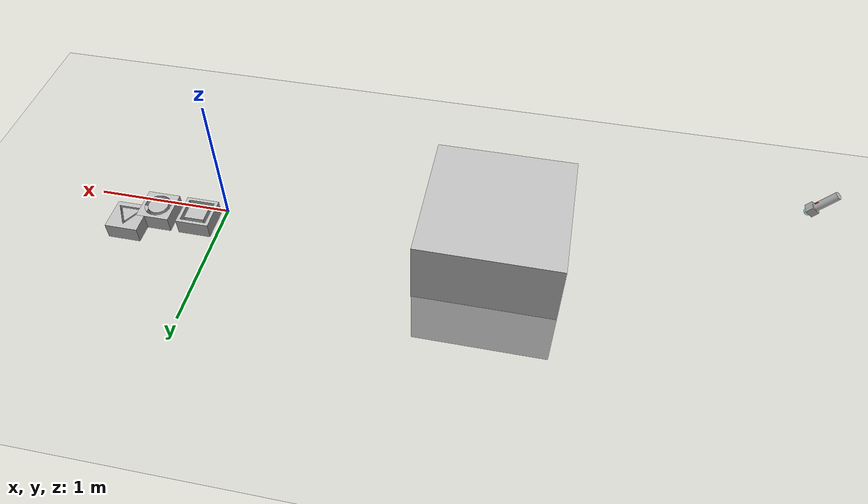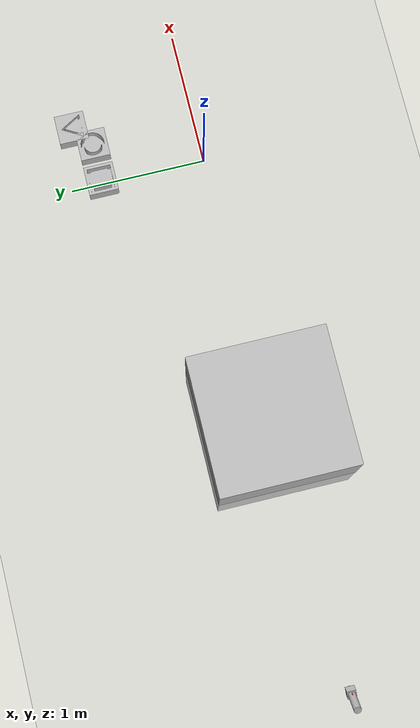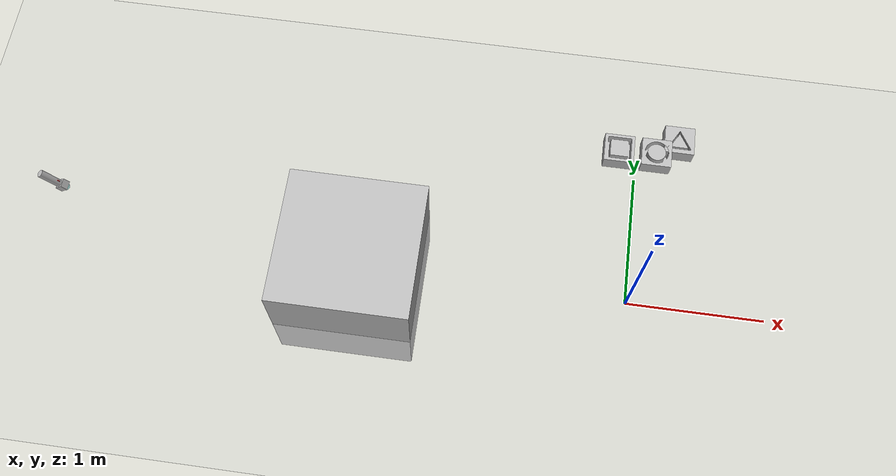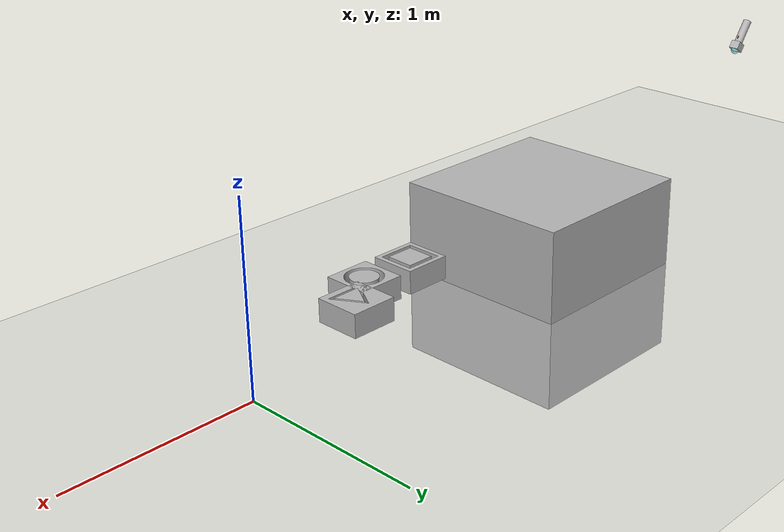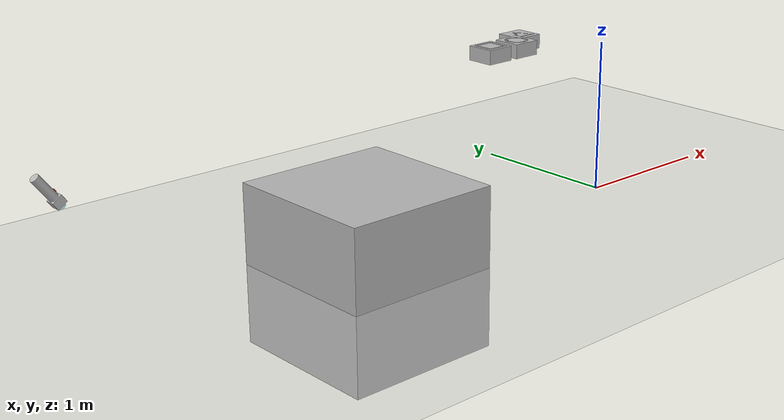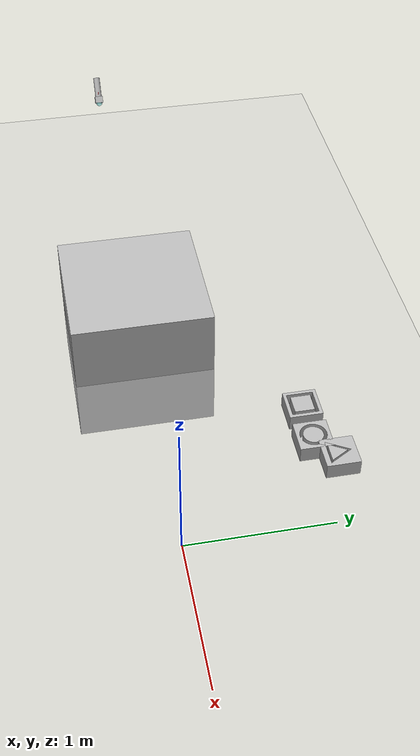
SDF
<sdf version="1.6">
 <world name="default">
  <scene>
   <ambient>0.4 0.4 0.4 1</ambient>
   <background>0.25 0.25 0.25 1</background>
   <shadows>true</shadows>
  </scene>
  <light type="directional" name="some_light">
   <diffuse>0.7 0.7 0.7 0</diffuse>
   <specular>1 1 1 0</specular>
   <direction>-1 -1 -1</direction>
  </light>
  <include><uri>model://sun</uri></include>
  <include><uri>model://ground_plane</uri></include>
  <model name="big_square_path">
   <pose>-0.25 0.78 0.78 0 0 0</pose>
   <static>false</static>
   <link name="link">
    <inertial><mass>1</mass></inertial>
    <collision name="collision">
     <geometry><mesh><uri>model://bigSquare/BigSquare.stl</uri><scale>0.001 0.001 0.001</scale></mesh></geometry>
    </collision>
    <visual name="visual">
     <geometry><mesh><uri>model://bigSquare/BigSquare.stl</uri><scale>0.001 0.001 0.001</scale></mesh></geometry>
    </visual>
   </link>
  </model>
  <model name="big_circle_path">
   <pose>0 0.78 0.78 0 0 0</pose>
   <static>false</static>
   <link name="link">
    <inertial><mass>1</mass></inertial>
    <collision name="collision">
     <pose>-0.115 0 0 0 -0 0</pose>
     <geometry><mesh><uri>model://bigCircle/BigCircle.stl</uri><scale>0.001 0.001 0.001</scale></mesh></geometry>
    </collision>
    <visual name="visual">
     <pose>-0.115 0 0 0 -0 0</pose>
     <geometry><mesh><uri>model://bigCircle/BigCircle.stl</uri><scale>0.001 0.001 0.001</scale></mesh></geometry>
    </visual>
   </link>
  </model>
  <model name="big_triangle_path">
   <pose>0.25 0.78 0.78 0 0 0</pose>
   <static>false</static>
   <link name="link">
    <inertial><mass>1</mass></inertial>
    <collision name="collision">
     <pose>-0.1 0.115 0 0 -0 0</pose>
     <geometry>
      <mesh><uri>model://bigTriangle/BigTriangle.stl</uri><scale>0.001 0.001 0.001</scale></mesh>
     </geometry>
    </collision>
    <visual name="visual">
     <pose>-0.1 0.115 0 0 0 0</pose>
     <geometry>
      <mesh><uri>model://bigTriangle/BigTriangle.stl</uri><scale>0.001 0.001 0.001</scale></mesh>
     </geometry>
    </visual>
   </link>
  </model>
  <model name="my_model">
   <pose>-2 0 0 0 0 0</pose>
   <static>true</static>
   <link name="link">
    <inertial><mass>1.0</mass></inertial>
    <collision name="collision"><geometry><box><size>1 1 1</size></box></geometry></collision>
    <visual name="visual"><geometry><box><size>1 1 1</size></box></geometry></visual>
   </link>
   <joint name="joint1" type="fixed"><parent>link</parent><child>light_source</child></joint>
   <link name="light_source">
    <pose>0 0 0.20 0 0 0</pose>
    <light name="lamp" type="spot">
     <pose>0 0 0.0 0 3.14159 0</pose>
     <attenuation><range>30</range><linear>0.05</linear></attenuation>
     <diffuse>0.5 1 1 1</diffuse>
     <specular>1 1 1 1</specular>
     <spot><inner_angle>0.3</inner_angle><outer_angle>0.35</outer_angle><falloff>1</falloff></spot>
     <direction>0 0 -1</direction>
    </light>
    <visual name="lamp">
     <geometry><sphere><radius>0.025</radius></sphere></geometry>
     <transparency>0.4</transparency>
     <material>
      <ambient>0.5 1 1 1</ambient>
      <diffuse>0.5 1 1 1</diffuse>
      <specular>1 1 1 1</specular>
      <emissive>0.5 1 1 1</emissive>
     </material>
    </visual>
   </link>
   <plugin name="light_control" filename="libLedPlugin.so">
    <light><light>link/lamp</light><duration>0.5</duration><interval>0.5</interval></light>
   </plugin>
  </model>
  <model name="light_model">
   <static>1</static>
   <pose>-4 0 1 0 2.5 0</pose>
   <link name="handle">
    <pose>0 0 0.075 0 0 0</pose>
    <visual name="visual">
     <geometry><cylinder><radius>0.025</radius><length>0.15</length></cylinder></geometry>
    </visual>
    <light name="button" type="point">
     <pose>-0.025 0 0.05 0 0 0</pose>
     <attenuation><range>0.20</range><linear>0.10</linear></attenuation>
     <diffuse>1 0.2 0.2 1</diffuse>
     <specular>1 1 1 1</specular>
    </light>
    <visual name="button">
     <pose>-0.025 0 0.05 0 0 0</pose>
     <geometry><box><size>0.01 0.005 0.02</size></box></geometry>
     <material>
      <ambient>1 0.2 0.2 1</ambient>
      <diffuse>1 0.2 0.2 1</diffuse>
      <specular>1 1 1 1</specular>
      <emissive>1 0.2 0.2 1</emissive>
     </material>
    </visual>
   </link>
   <link name="head">
    <pose>0 0 0.175 0 0 0</pose>
    <visual name="visual"><geometry><box><size>0.06 0.06 0.05</size></box></geometry></visual>
   </link>
   <link name="light_source">
    <pose>0 0 0.20 0 0 0</pose>
    <light name="lamp" type="spot">
     <pose>0 0 0.0 0 3.14159 0</pose>
     <attenuation><range>30</range><linear>0.05</linear></attenuation>
     <diffuse>0.5 1 1 1</diffuse>
     <specular>1 1 1 1</specular>
     <spot><inner_angle>0.3</inner_angle><outer_angle>0.35</outer_angle><falloff>1</falloff></spot>
     <direction>0 0 -1</direction>
    </light>
    <visual name="lamp">
     <geometry><sphere><radius>0.025</radius></sphere></geometry>
     <transparency>0.4</transparency>
     <material>
      <ambient>0.5 1 1 1</ambient>
      <diffuse>0.5 1 1 1</diffuse>
      <specular>1 1 1 1</specular>
      <emissive>0.5 1 1 1</emissive>
     </material>
    </visual>
   </link>
   <joint name="joint1" type="fixed"><parent>handle</parent><child>head</child></joint>
   <joint name="joint2" type="fixed"><parent>head</parent><child>light_source</child></joint>
   <plugin name="light_control" filename="libLedPlugin.so">
    <enable>true</enable>
    <light><id>light_source/lamp</id><duration>0.3</duration><interval>0.4</interval><enable>true</enable></light>
    <light>
     <id>handle/button</id>
     <block><duration>0.5</duration><interval>0</interval><color>1 1 0</color></block>
     <block><duration>0.5</duration><interval>0</interval><color>0 1 1</color></block>
     <block><duration>0.5</duration><interval>0</interval><color>1 0 1</color></block>
     <enable>true</enable>
    </light>
   </plugin>
  </model>
 </world>
</sdf>
